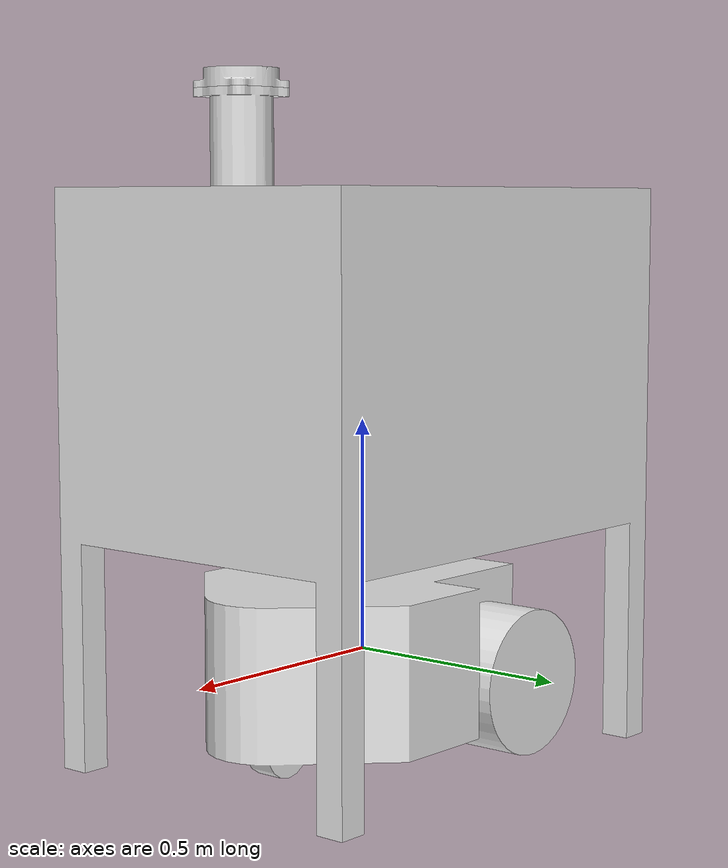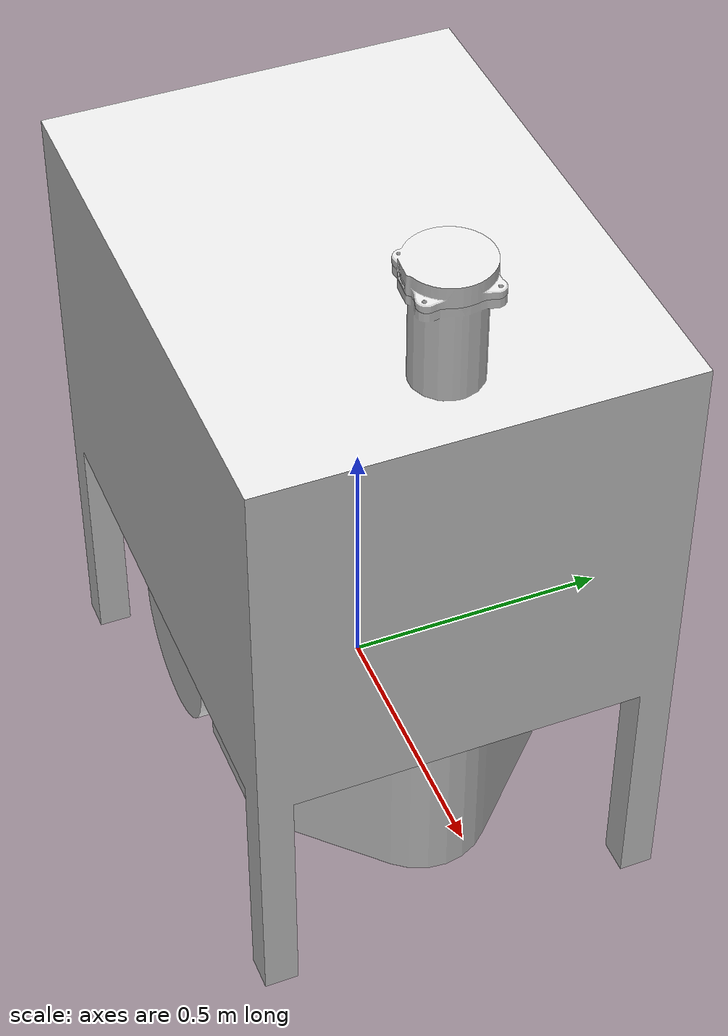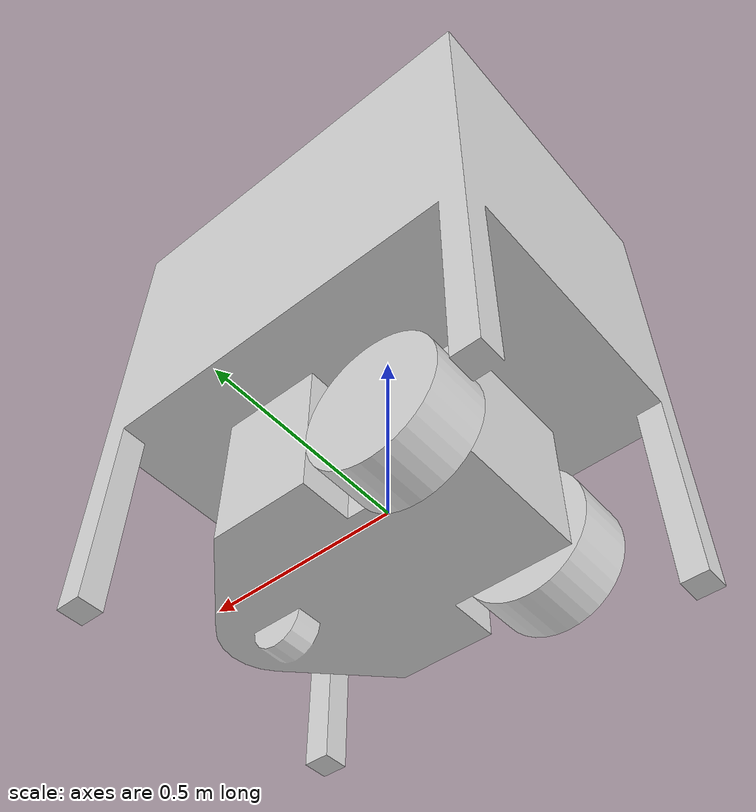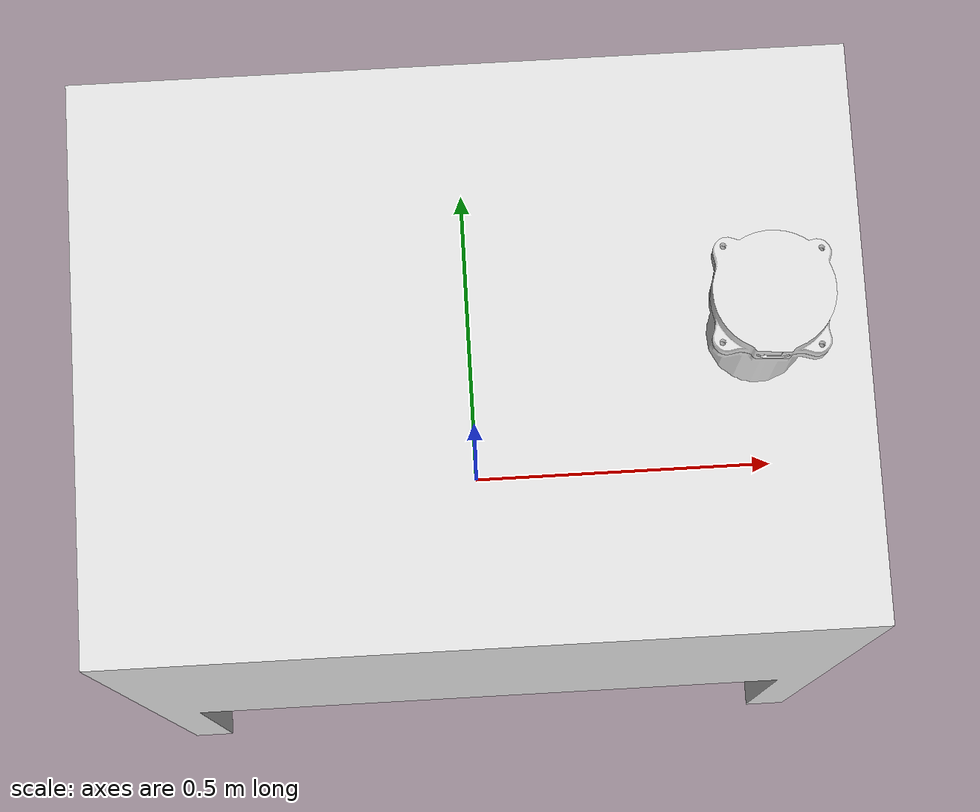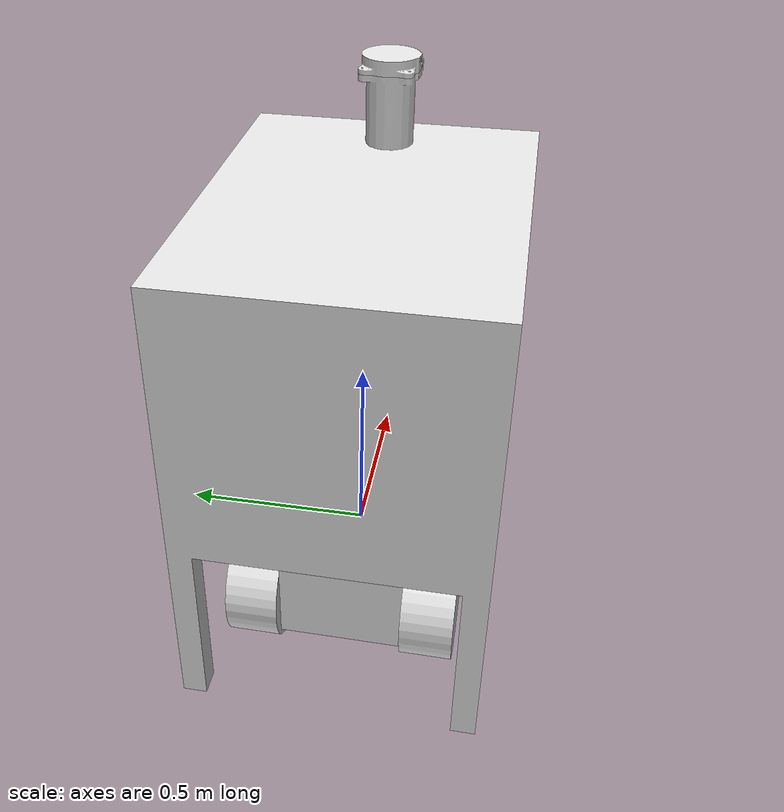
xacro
<?xml version="1.0" encoding="utf-8"?>
<robot xmlns:xacro="http://www.ros.org/wiki/xacro" name="mob_rob_arm_description">

  <!-- ===== Parametros ajustables (fix_export.py) ===== -->
  <xacro:property name="column_effort" value="2000"/>   <!-- N: UR10 + carga + columna -->
  <xacro:property name="column_velocity" value="0.1"/>
  <xacro:property name="column_damping" value="200"/>
  <xacro:property name="column_friction" value="5"/>
  <xacro:property name="turret_damping" value="20"/>
  <xacro:property name="turret_friction" value="1"/>
  <link
    name="base_link">
    <inertial>
      <origin
        xyz="0.055562 -1.5661E-05 0.00027542"
        rpy="0 0 0" />
      <mass
        value="98.477" />
      <inertia
        ixx="2.693"
        ixy="0.00039267"
        ixz="0.038014"
        iyy="4.3528"
        iyz="-4.2475E-07"
        izz="5.312" />
    </inertial>
    <visual>
      <origin
        xyz="0 0 0"
        rpy="0 0 0" />
      <geometry>
        <mesh
          filename="package://mob_rob_arm_description/meshes/base_link.STL" />
      </geometry>
      <material
        name="">
        <color
          rgba="0.89412 0.89412 0.89412 1" />
      </material>
    </visual>
    <collision>
      <origin
        xyz="0 0 0"
        rpy="0 0 0" />
      <geometry>
        <mesh
          filename="package://mob_rob_arm_description/meshes/base_link.STL" />
      </geometry>
    </collision>
  </link>
  <link
    name="left_wheel_link">
    <inertial>
      <origin
        xyz="-4.4409E-16 6.6613E-16 -0.0054315"
        rpy="0 0 0" />
      <mass
        value="11.612" />
      <inertia
        ixx="0.095176"
        ixy="-4.9444E-19"
        ixz="7.2943E-18"
        iyy="0.095176"
        iyz="6.8031E-18"
        izz="0.13992" />
    </inertial>
    <visual>
      <origin
        xyz="0 0 0"
        rpy="0 0 0" />
      <geometry>
        <mesh
          filename="package://mob_rob_arm_description/meshes/left_wheel_link.STL" />
      </geometry>
      <material
        name="">
        <color
          rgba="0.89412 0.89412 0.89412 1" />
      </material>
    </visual>
    <collision>
      <origin
        xyz="0 0 0"
        rpy="0 0 0" />
      <geometry>
        <mesh
          filename="package://mob_rob_arm_description/meshes/left_wheel_link.STL" />
      </geometry>
    </collision>
  </link>
  <joint
    name="left_wheel_joint"
    type="continuous">
    <origin
      xyz="-0.21209 0.23495 -0.067945"
      rpy="-1.5708 0 0" />
    <parent
      link="base_link" />
    <child
      link="left_wheel_link" />
    <axis
      xyz="0 0 1" />
    <limit
      effort="1000"
      velocity="100" />
  </joint>
  <link
    name="right_wheel_link">
    <inertial>
      <origin
        xyz="0 0 0.0054315"
        rpy="0 0 0" />
      <mass
        value="11.612" />
      <inertia
        ixx="0.095176"
        ixy="-1.067E-34"
        ixz="7.5214E-18"
        iyy="0.095176"
        iyz="-1.6351E-18"
        izz="0.13992" />
    </inertial>
    <visual>
      <origin
        xyz="0 0 0"
        rpy="0 0 0" />
      <geometry>
        <mesh
          filename="package://mob_rob_arm_description/meshes/right_wheel_link.STL" />
      </geometry>
      <material
        name="">
        <color
          rgba="0.89412 0.89412 0.89412 1" />
      </material>
    </visual>
    <collision>
      <origin
        xyz="0 0 0"
        rpy="0 0 0" />
      <geometry>
        <mesh
          filename="package://mob_rob_arm_description/meshes/right_wheel_link.STL" />
      </geometry>
    </collision>
  </link>
  <joint
    name="right_wheel_joint"
    type="continuous">
    <origin
      xyz="-0.21209 -0.23495 -0.067945"
      rpy="-1.5708 0 0" />
    <parent
      link="base_link" />
    <child
      link="right_wheel_link" />
    <axis
      xyz="0 0 1" />
    <limit
      effort="1000"
      velocity="100" />
  </joint>
  <link
    name="top_base_link">
    <inertial>
      <origin
        xyz="0.026759 -2.2204E-16 0.33155"
        rpy="0 0 0" />
      <mass
        value="212.5" />
      <inertia
        ixx="31.893"
        ixy="-6.156E-15"
        ixz="-0.12955"
        iyy="43.673"
        iyz="1.1526E-14"
        izz="42.663" />
    </inertial>
    <visual>
      <origin
        xyz="0 0 0"
        rpy="0 0 0" />
      <geometry>
        <mesh
          filename="package://mob_rob_arm_description/meshes/top_base_link.STL" />
      </geometry>
      <material
        name="">
        <color
          rgba="0.89412 0.89412 0.89412 1" />
      </material>
    </visual>
    <collision>
      <origin
        xyz="0 0 0"
        rpy="0 0 0" />
      <geometry>
        <mesh
          filename="package://mob_rob_arm_description/meshes/top_base_link.STL" />
      </geometry>
    </collision>
  </link>
  <joint
    name="top_base_joint"
    type="continuous">
    <origin
      xyz="0 0 0.27242"
      rpy="0 0 0" />
    <parent
      link="base_link" />
    <child
      link="top_base_link" />
    <axis
      xyz="0 0 1" />
    <limit
      effort="1000"
      velocity="20" />
    <dynamics damping="${turret_damping}" friction="${turret_friction}" />
  </joint>
  <link
    name="column_link">
    <inertial>
      <origin
        xyz="-8.4124E-07 -1.128E-05 0.46858"
        rpy="0 0 0" />
      <mass
        value="11.781" />
      <inertia
        ixx="0.87314"
        ixy="-7.0005E-07"
        ixz="4.4594E-06"
        iyy="0.87313"
        iyz="5.9794E-05"
        izz="0.024015" />
    </inertial>
    <visual>
      <origin
        xyz="0 0 0"
        rpy="0 0 0" />
      <geometry>
        <mesh
          filename="package://mob_rob_arm_description/meshes/column_link.STL" />
      </geometry>
      <material
        name="">
        <color
          rgba="0.89412 0.89412 0.89412 1" />
      </material>
    </visual>
    <collision>
      <origin
        xyz="0 0 0"
        rpy="0 0 0" />
      <geometry>
        <mesh
          filename="package://mob_rob_arm_description/meshes/column_link.STL" />
      </geometry>
    </collision>
  </link>
  <joint
    name="column_joint"
    type="prismatic">
    <origin
      xyz="0.3683 0 -0.0127"
      rpy="0 0 0" />
    <parent
      link="top_base_link" />
    <child
      link="column_link" />
    <axis
      xyz="0 0 1" />
    <limit
      lower="0"
      upper="0.32131"
      effort="${column_effort}"
      velocity="${column_velocity}" />
    <dynamics damping="${column_damping}" friction="${column_friction}" />
  </joint>
  <link
    name="basea_link">
    <inertial>
      <origin
        xyz="-4.8798E-06 -0.00015943 0.018435"
        rpy="0 0 0" />
      <mass
        value="0.70632" />
      <inertia
        ixx="0.0011555"
        ixy="-6.7422E-07"
        ixz="9.3378E-08"
        iyy="0.0011459"
        iyz="1.9314E-07"
        izz="0.002129" />
    </inertial>
    <visual>
      <origin
        xyz="0 0 0"
        rpy="0 0 0" />
      <geometry>
        <mesh
          filename="package://mob_rob_arm_description/meshes/basea_link.STL" />
      </geometry>
      <material
        name="">
        <color
          rgba="0.89412 0.89412 0.89412 1" />
      </material>
    </visual>
    <collision>
      <origin
        xyz="0 0 0"
        rpy="0 0 0" />
      <geometry>
        <mesh
          filename="package://mob_rob_arm_description/meshes/basea_link.STL" />
      </geometry>
    </collision>
  </link>
  <joint
    name="basea_joint"
    type="fixed">
    <origin
      xyz="0 0 0.9271"
      rpy="0 0 0" />
    <parent
      link="column_link" />
    <child
      link="basea_link" />
  </joint>
</robot>
